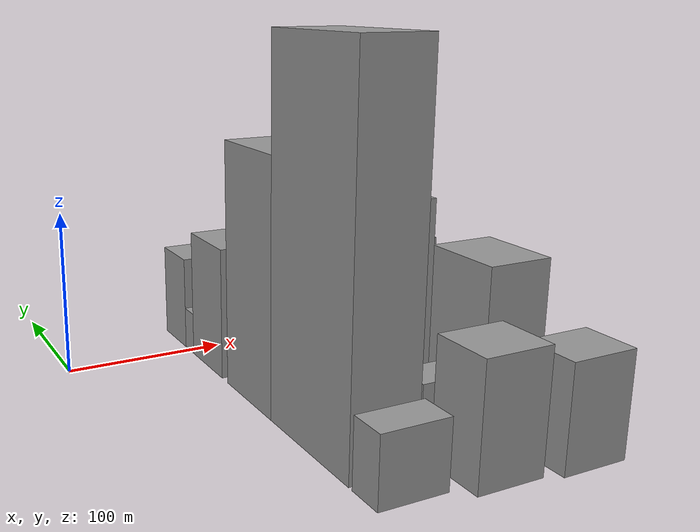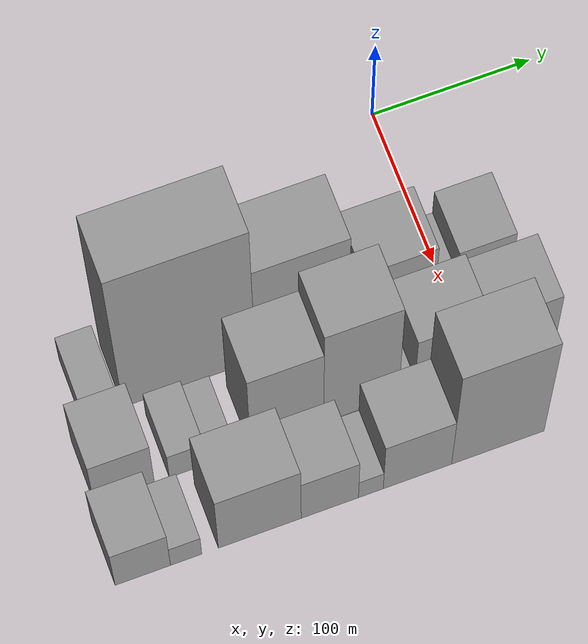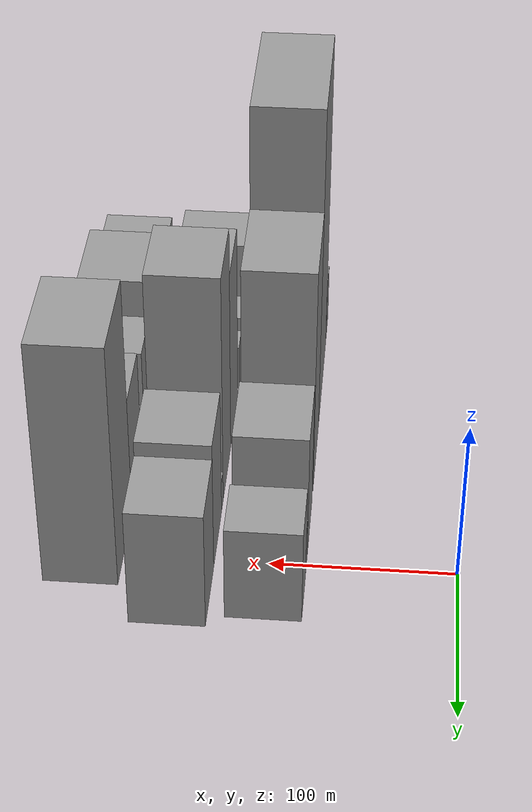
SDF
<sdf version="1.6">
 <world name="default">
  <model name="building_9">
   <static>1</static>
   <pose>100.0000 -213.0983 0 0.000000 0.000000 0.000000</pose>
   <link name="link">
    <pose>0 0 19.50 0 0 0</pose>
    <collision name="collision"><geometry><box><size>40.0000 21.9523 39.0000</size></box></geometry></collision>
    <visual name="visual">
     <cast_shadows>0</cast_shadows>
     <geometry><box><size>40.0000 21.9523 39.0000</size></box></geometry>
     <material>
      <script>
       <uri>model://grey_wall/materials/scripts</uri>
       <uri>model://grey_wall/materials/textures</uri>
       <name>vrc/grey_wall</name>
      </script>
     </material>
    </visual>
   </link>
  </model>
  <model name="building_10">
   <static>1</static>
   <pose>100.0000 -158.5872 0 0.000000 0.000000 0.000000</pose>
   <link name="link">
    <pose>0 0 105.00 0 0 0</pose>
    <collision name="collision"><geometry><box><size>40.0000 81.0699 210.0000</size></box></geometry></collision>
    <visual name="visual">
     <cast_shadows>0</cast_shadows>
     <geometry><box><size>40.0000 81.0699 210.0000</size></box></geometry>
     <material>
      <script>
       <uri>model://grey_wall/materials/scripts</uri>
       <uri>model://grey_wall/materials/textures</uri>
       <name>vrc/grey_wall</name>
      </script>
     </material>
    </visual>
   </link>
  </model>
  <model name="building_11">
   <static>1</static>
   <pose>100.0000 -89.3004 0 0.000000 0.000000 0.000000</pose>
   <link name="link">
    <pose>0 0 73.50 0 0 0</pose>
    <collision name="collision"><geometry><box><size>40.0000 57.5038 147.0000</size></box></geometry></collision>
    <visual name="visual">
     <cast_shadows>0</cast_shadows>
     <geometry><box><size>40.0000 57.5038 147.0000</size></box></geometry>
     <material>
      <script>
       <uri>model://grey_wall/materials/scripts</uri>
       <uri>model://grey_wall/materials/textures</uri>
       <name>vrc/grey_wall</name>
      </script>
     </material>
    </visual>
   </link>
  </model>
  <model name="building_12">
   <static>1</static>
   <pose>100.0000 -29.7991 0 0.000000 0.000000 0.000000</pose>
   <link name="link">
    <pose>0 0 40.50 0 0 0</pose>
    <collision name="collision"><geometry><box><size>40.0000 45.4987 81.0000</size></box></geometry></collision>
    <visual name="visual">
     <cast_shadows>0</cast_shadows>
     <geometry><box><size>40.0000 45.4987 81.0000</size></box></geometry>
     <material>
      <script>
       <uri>model://grey_wall/materials/scripts</uri>
       <uri>model://grey_wall/materials/textures</uri>
       <name>vrc/grey_wall</name>
      </script>
     </material>
    </visual>
   </link>
  </model>
  <model name="building_13">
   <static>1</static>
   <pose>100.0000 -0.4516 0 0.000000 0.000000 0.000000</pose>
   <link name="link">
    <pose>0 0 13.50 0 0 0</pose>
    <collision name="collision"><geometry><box><size>40.0000 13.1964 27.0000</size></box></geometry></collision>
    <visual name="visual">
     <cast_shadows>0</cast_shadows>
     <geometry><box><size>40.0000 13.1964 27.0000</size></box></geometry>
     <material>
      <script>
       <uri>model://grey_wall/materials/scripts</uri>
       <uri>model://grey_wall/materials/textures</uri>
       <name>vrc/grey_wall</name>
      </script>
     </material>
    </visual>
   </link>
  </model>
  <model name="building_14">
   <static>1</static>
   <pose>100.0000 23.7099 0 0.000000 0.000000 0.000000</pose>
   <link name="link">
    <pose>0 0 30.00 0 0 0</pose>
    <collision name="collision"><geometry><box><size>40.0000 35.1267 60.0000</size></box></geometry></collision>
    <visual name="visual">
     <cast_shadows>0</cast_shadows>
     <geometry><box><size>40.0000 35.1267 60.0000</size></box></geometry>
     <material>
      <script>
       <uri>model://grey_wall/materials/scripts</uri>
       <uri>model://grey_wall/materials/textures</uri>
       <name>vrc/grey_wall</name>
      </script>
     </material>
    </visual>
   </link>
  </model>
  <model name="building_35">
   <static>1</static>
   <pose>149.0000 -215.5051 0 0.000000 0.000000 0.000000</pose>
   <link name="link">
    <pose>0 0 34.50 0 0 0</pose>
    <collision name="collision"><geometry><box><size>40.0000 36.2876 69.0000</size></box></geometry></collision>
    <visual name="visual">
     <cast_shadows>0</cast_shadows>
     <geometry><box><size>40.0000 36.2876 69.0000</size></box></geometry>
     <material>
      <script>
       <uri>model://grey_wall/materials/scripts</uri>
       <uri>model://grey_wall/materials/textures</uri>
       <name>vrc/grey_wall</name>
      </script>
     </material>
    </visual>
   </link>
  </model>
  <model name="building_36">
   <static>1</static>
   <pose>149.0000 -177.1518 0 0.000000 0.000000 0.000000</pose>
   <link name="link">
    <pose>0 0 19.50 0 0 0</pose>
    <collision name="collision"><geometry><box><size>40.0000 22.4188 39.0000</size></box></geometry></collision>
    <visual name="visual">
     <cast_shadows>0</cast_shadows>
     <geometry><box><size>40.0000 22.4188 39.0000</size></box></geometry>
     <material>
      <script>
       <uri>model://grey_wall/materials/scripts</uri>
       <uri>model://grey_wall/materials/textures</uri>
       <name>vrc/grey_wall</name>
      </script>
     </material>
    </visual>
   </link>
  </model>
  <model name="building_37">
   <static>1</static>
   <pose>149.0000 -157.4799 0 0.000000 0.000000 0.000000</pose>
   <link name="link">
    <pose>0 0 15.00 0 0 0</pose>
    <collision name="collision"><geometry><box><size>40.0000 16.9250 30.0000</size></box></geometry></collision>
    <visual name="visual">
     <cast_shadows>0</cast_shadows>
     <geometry><box><size>40.0000 16.9250 30.0000</size></box></geometry>
     <material>
      <script>
       <uri>model://grey_wall/materials/scripts</uri>
       <uri>model://grey_wall/materials/textures</uri>
       <name>vrc/grey_wall</name>
      </script>
     </material>
    </visual>
   </link>
  </model>
  <model name="building_38">
   <static>1</static>
   <pose>149.0000 -116.6155 0 0.000000 0.000000 0.000000</pose>
   <link name="link">
    <pose>0 0 60.00 0 0 0</pose>
    <collision name="collision"><geometry><box><size>40.0000 44.8040 120.0000</size></box></geometry></collision>
    <visual name="visual">
     <cast_shadows>0</cast_shadows>
     <geometry><box><size>40.0000 44.8040 120.0000</size></box></geometry>
     <material>
      <script>
       <uri>model://grey_wall/materials/scripts</uri>
       <uri>model://grey_wall/materials/textures</uri>
       <name>vrc/grey_wall</name>
      </script>
     </material>
    </visual>
   </link>
  </model>
  <model name="building_39">
   <static>1</static>
   <pose>149.0000 -71.2131 0 0.000000 0.000000 0.000000</pose>
   <link name="link">
    <pose>0 0 75.00 0 0 0</pose>
    <collision name="collision"><geometry><box><size>40.0000 46.0008 150.0000</size></box></geometry></collision>
    <visual name="visual">
     <cast_shadows>0</cast_shadows>
     <geometry><box><size>40.0000 46.0008 150.0000</size></box></geometry>
     <material>
      <script>
       <uri>model://grey_wall/materials/scripts</uri>
       <uri>model://grey_wall/materials/textures</uri>
       <name>vrc/grey_wall</name>
      </script>
     </material>
    </visual>
   </link>
  </model>
  <model name="building_40">
   <static>1</static>
   <pose>149.0000 -43.3654 0 0.000000 0.000000 0.000000</pose>
   <link name="link">
    <pose>0 0 10.50 0 0 0</pose>
    <collision name="collision"><geometry><box><size>40.0000 9.6945 21.0000</size></box></geometry></collision>
    <visual name="visual">
     <cast_shadows>0</cast_shadows>
     <geometry><box><size>40.0000 9.6945 21.0000</size></box></geometry>
     <material>
      <script>
       <uri>model://grey_wall/materials/scripts</uri>
       <uri>model://grey_wall/materials/textures</uri>
       <name>vrc/grey_wall</name>
      </script>
     </material>
    </visual>
   </link>
  </model>
  <model name="building_41">
   <static>1</static>
   <pose>149.0000 -16.7103 0 0.000000 0.000000 0.000000</pose>
   <link name="link">
    <pose>0 0 42.00 0 0 0</pose>
    <collision name="collision"><geometry><box><size>40.0000 43.6156 84.0000</size></box></geometry></collision>
    <visual name="visual">
     <cast_shadows>0</cast_shadows>
     <geometry><box><size>40.0000 43.6156 84.0000</size></box></geometry>
     <material>
      <script>
       <uri>model://grey_wall/materials/scripts</uri>
       <uri>model://grey_wall/materials/textures</uri>
       <name>vrc/grey_wall</name>
      </script>
     </material>
    </visual>
   </link>
  </model>
  <model name="building_42">
   <static>1</static>
   <pose>149.0000 27.0247 0 0.000000 0.000000 0.000000</pose>
   <link name="link">
    <pose>0 0 37.50 0 0 0</pose>
    <collision name="collision"><geometry><box><size>40.0000 43.8545 75.0000</size></box></geometry></collision>
    <visual name="visual">
     <cast_shadows>0</cast_shadows>
     <geometry><box><size>40.0000 43.8545 75.0000</size></box></geometry>
     <material>
      <script>
       <uri>model://grey_wall/materials/scripts</uri>
       <uri>model://grey_wall/materials/textures</uri>
       <name>vrc/grey_wall</name>
      </script>
     </material>
    </visual>
   </link>
  </model>
  <model name="building_65">
   <static>1</static>
   <pose>198.0000 -221.7648 0 0.000000 0.000000 0.000000</pose>
   <link name="link">
    <pose>0 0 30.00 0 0 0</pose>
    <collision name="collision"><geometry><box><size>40.0000 33.2224 60.0000</size></box></geometry></collision>
    <visual name="visual">
     <cast_shadows>0</cast_shadows>
     <geometry><box><size>40.0000 33.2224 60.0000</size></box></geometry>
     <material>
      <script>
       <uri>model://grey_wall/materials/scripts</uri>
       <uri>model://grey_wall/materials/textures</uri>
       <name>vrc/grey_wall</name>
      </script>
     </material>
    </visual>
   </link>
  </model>
  <model name="building_66">
   <static>1</static>
   <pose>198.0000 -195.7452 0 0.000000 0.000000 0.000000</pose>
   <link name="link">
    <pose>0 0 16.50 0 0 0</pose>
    <collision name="collision"><geometry><box><size>40.0000 18.8168 33.0000</size></box></geometry></collision>
    <visual name="visual">
     <cast_shadows>0</cast_shadows>
     <geometry><box><size>40.0000 18.8168 33.0000</size></box></geometry>
     <material>
      <script>
       <uri>model://grey_wall/materials/scripts</uri>
       <uri>model://grey_wall/materials/textures</uri>
       <name>vrc/grey_wall</name>
      </script>
     </material>
    </visual>
   </link>
  </model>
  <model name="building_67">
   <static>1</static>
   <pose>198.0000 -151.3024 0 0.000000 0.000000 0.000000</pose>
   <link name="link">
    <pose>0 0 45.00 0 0 0</pose>
    <collision name="collision"><geometry><box><size>40.0000 50.0687 90.0000</size></box></geometry></collision>
    <visual name="visual">
     <cast_shadows>0</cast_shadows>
     <geometry><box><size>40.0000 50.0687 90.0000</size></box></geometry>
     <material>
      <script>
       <uri>model://grey_wall/materials/scripts</uri>
       <uri>model://grey_wall/materials/textures</uri>
       <name>vrc/grey_wall</name>
      </script>
     </material>
    </visual>
   </link>
  </model>
  <model name="building_68">
   <static>1</static>
   <pose>198.0000 -108.8697 0 0.000000 0.000000 0.000000</pose>
   <link name="link">
    <pose>0 0 33.00 0 0 0</pose>
    <collision name="collision"><geometry><box><size>40.0000 34.7968 66.0000</size></box></geometry></collision>
    <visual name="visual">
     <cast_shadows>0</cast_shadows>
     <geometry><box><size>40.0000 34.7968 66.0000</size></box></geometry>
     <material>
      <script>
       <uri>model://grey_wall/materials/scripts</uri>
       <uri>model://grey_wall/materials/textures</uri>
       <name>vrc/grey_wall</name>
      </script>
     </material>
    </visual>
   </link>
  </model>
  <model name="building_69">
   <static>1</static>
   <pose>198.0000 -83.9388 0 0.000000 0.000000 0.000000</pose>
   <link name="link">
    <pose>0 0 15.00 0 0 0</pose>
    <collision name="collision"><geometry><box><size>40.0000 15.0648 30.0000</size></box></geometry></collision>
    <visual name="visual">
     <cast_shadows>0</cast_shadows>
     <geometry><box><size>40.0000 15.0648 30.0000</size></box></geometry>
     <material>
      <script>
       <uri>model://grey_wall/materials/scripts</uri>
       <uri>model://grey_wall/materials/textures</uri>
       <name>vrc/grey_wall</name>
      </script>
     </material>
    </visual>
   </link>
  </model>
  <model name="building_70">
   <static>1</static>
   <pose>198.0000 -55.4858 0 0.000000 0.000000 0.000000</pose>
   <link name="link">
    <pose>0 0 39.00 0 0 0</pose>
    <collision name="collision"><geometry><box><size>40.0000 41.8413 78.0000</size></box></geometry></collision>
    <visual name="visual">
     <cast_shadows>0</cast_shadows>
     <geometry><box><size>40.0000 41.8413 78.0000</size></box></geometry>
     <material>
      <script>
       <uri>model://grey_wall/materials/scripts</uri>
       <uri>model://grey_wall/materials/textures</uri>
       <name>vrc/grey_wall</name>
      </script>
     </material>
    </visual>
   </link>
  </model>
  <model name="building_71">
   <static>1</static>
   <pose>198.0000 -6.1204 0 0.000000 0.000000 0.000000</pose>
   <link name="link">
    <pose>0 0 78.00 0 0 0</pose>
    <collision name="collision"><geometry><box><size>40.0000 56.8894 156.0000</size></box></geometry></collision>
    <visual name="visual">
     <cast_shadows>0</cast_shadows>
     <geometry><box><size>40.0000 56.8894 156.0000</size></box></geometry>
     <material>
      <script>
       <uri>model://grey_wall/materials/scripts</uri>
       <uri>model://grey_wall/materials/textures</uri>
       <name>vrc/grey_wall</name>
      </script>
     </material>
    </visual>
   </link>
  </model>
 </world>
</sdf>
